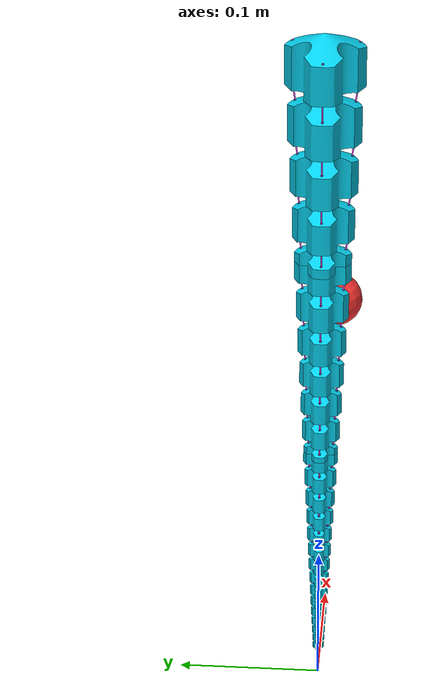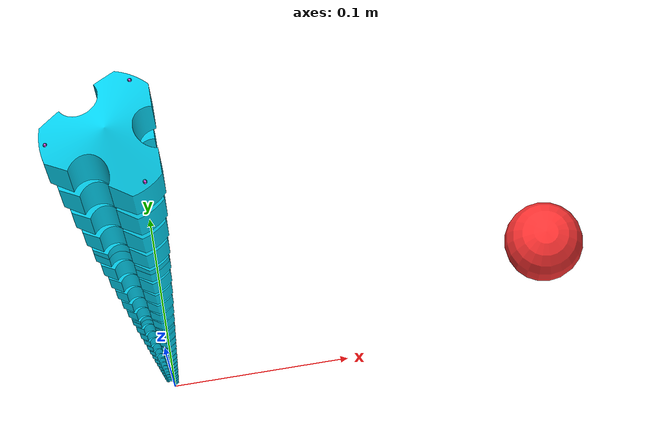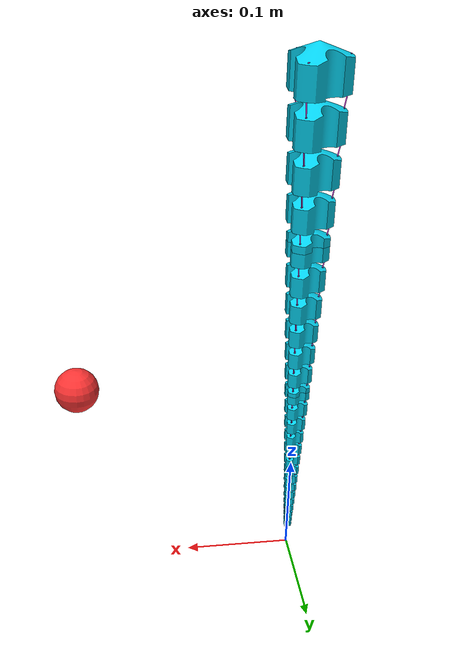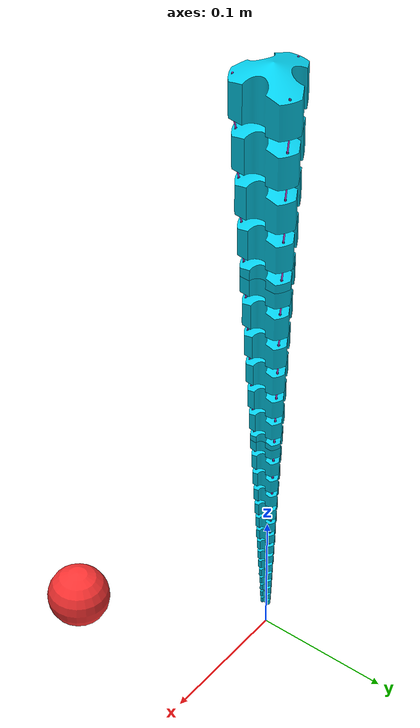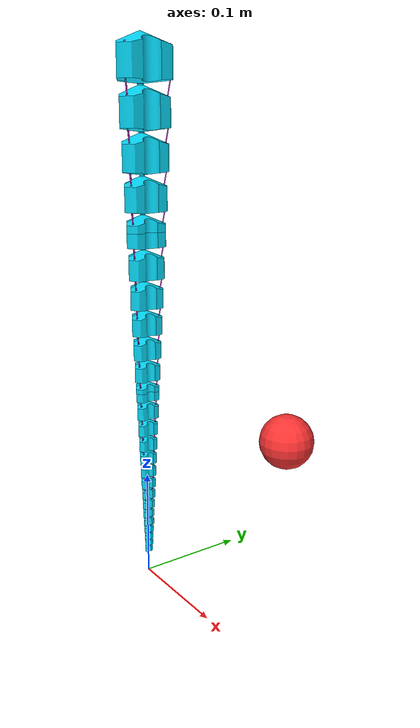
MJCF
<mujoco model="scene">
  <compiler angle="radian" meshdir="assets/"/>

  <size nkey="5"/>

  <visual>
    <global azimuth="160" elevation="0" offwidth="1920" offheight="1080"/>
    <quality shadowsize="0"/>
    <headlight ambient="0.15 0.15 0.15" diffuse="0.9 0.9 0.9" specular="0 0 0"/>
    <map shadowclip="0"/>
    <rgba haze="0 0 0 0"/>
  </visual>

  <default>
    <default class="my-SpiRob">
      <joint armature="0.005" frictionloss="0.1"/>
      <general biastype="affine" gainprm="50" biasprm="0 -50 1"/>
      <default class="visual">
        <geom type="mesh" contype="0" conaffinity="0" group="2"/>
      </default>
      <default class="collision">
        <geom group="3" friction="1 0.5 0.1"/>
      </default>
    </default>
  </default>

  <asset>
    <texture type="skybox" builtin="gradient" rgb1="0 0 0" rgb2="0 0 0" width="512" height="3072"/>
    <texture type="2d" name="groundplane" builtin="checker" rgb1="0.08 0.08 0.09" rgb2="0.04 0.04 0.045" width="300" height="300"/>
    <material name="segment_1__configuration_default_material" rgba="0.015686 0.811765 0.929412 1"/>
    <material name="segment_2__configuration_default_material" rgba="0.015686 0.811765 0.929412 1"/>
    <material name="segment_3__configuration_default_material" rgba="0.015686 0.811765 0.929412 1"/>
    <material name="segment_4__configuration_default_material" rgba="0.015686 0.811765 0.929412 1"/>
    <material name="segment_5_2__configuration_default_material" rgba="0.015686 0.811765 0.929412 1"/>
    <material name="segment_5_1__configuration_default_material" rgba="0.015686 0.811765 0.929412 1"/>
    <material name="segment_6__configuration_default_material" rgba="0.015686 0.811765 0.929412 1"/>
    <material name="segment_7__configuration_default_material" rgba="0.015686 0.811765 0.929412 1"/>
    <material name="segment_8__configuration_default_material" rgba="0.015686 0.811765 0.929412 1"/>
    <material name="segment_9__configuration_default_material" rgba="0.015686 0.811765 0.929412 1"/>
    <material name="segment_10__configuration_default_material" rgba="0.015686 0.811765 0.929412 1"/>
    <material name="segmentt_11_1__configuration_default_material" rgba="0.015686 0.811765 0.929412 1"/>
    <material name="segment_11_2__configuration_default_material" rgba="0.015686 0.811765 0.929412 1"/>
    <material name="segment_12__configuration_default_material" rgba="0.015686 0.811765 0.929412 1"/>
    <material name="segment_13__configuration_default_material" rgba="0.015686 0.811765 0.929412 1"/>
    <material name="segment_14__configuration_default_material" rgba="0.015686 0.811765 0.929412 1"/>
    <material name="segment_15__configuration_default_material" rgba="0.015686 0.811765 0.929412 1"/>
    <material name="segment_16__configuration_default_material" rgba="0.015686 0.811765 0.929412 1"/>
    <material name="segment_17__configuration_default_material" rgba="0.015686 0.811765 0.929412 1"/>
    <material name="segment_18__configuration_default_material" rgba="0.015686 0.811765 0.929412 1"/>
    <material name="segment_19__configuration_default_material" rgba="0.015686 0.811765 0.929412 1"/>
    <material name="segment_20__configuration_default_material" rgba="0.015686 0.811765 0.929412 1"/>
    <material name="segment_21__configuration_default_material" rgba="0.015686 0.811765 0.929412 1"/>
    <material name="segment_22__configuration_default_material" rgba="0.015686 0.811765 0.929412 1"/>
    <material name="segment_23__configuration_default_material" rgba="0.015686 0.811765 0.929412 1"/>
    <material name="segment_24__configuration_default_material" rgba="0.015686 0.811765 0.929412 1"/>
    <material name="segment_25__configuration_default_material" rgba="0.015686 0.811765 0.929412 1"/>
    <material name="groundplane" texture="groundplane" texuniform="true" texrepeat="6 6"/>
    <mesh name="segment_17__configuration_default" file="segment_17__configuration_default.stl"/>
    <mesh name="segment_8__configuration_default" file="segment_8__configuration_default.stl"/>
    <mesh name="segment_3__configuration_default" file="segment_3__configuration_default.stl"/>
    <mesh name="segment_15__configuration_default" file="segment_15__configuration_default.stl"/>
    <mesh name="segment_10__configuration_default" file="segment_10__configuration_default.stl"/>
    <mesh name="segment_25__configuration_default" file="segment_25__configuration_default.stl"/>
    <mesh name="segment_9__configuration_default" file="segment_9__configuration_default.stl"/>
    <mesh name="segment_20__configuration_default" file="segment_20__configuration_default.stl"/>
    <mesh name="segment_13__configuration_default" file="segment_13__configuration_default.stl"/>
    <mesh name="segment_16__configuration_default" file="segment_16__configuration_default.stl"/>
    <mesh name="segment_12__configuration_default" file="segment_12__configuration_default.stl"/>
    <mesh name="segment_22__configuration_default" file="segment_22__configuration_default.stl"/>
    <mesh name="segment_2__configuration_default" file="segment_2__configuration_default.stl"/>
    <mesh name="segment_21__configuration_default" file="segment_21__configuration_default.stl"/>
    <mesh name="segment_5_2__configuration_default" file="segment_5_2__configuration_default.stl"/>
    <mesh name="segment_19__configuration_default" file="segment_19__configuration_default.stl"/>
    <mesh name="segment_24__configuration_default" file="segment_24__configuration_default.stl"/>
    <mesh name="segment_18__configuration_default" file="segment_18__configuration_default.stl"/>
    <mesh name="segment_1__configuration_default" file="segment_1__configuration_default.stl"/>
    <mesh name="segment_4__configuration_default" file="segment_4__configuration_default.stl"/>
    <mesh name="segment_14__configuration_default" file="segment_14__configuration_default.stl"/>
    <mesh name="segmentt_11_1__configuration_default" file="segmentt_11_1__configuration_default.stl"/>
    <mesh name="segment_11_2__configuration_default" file="segment_11_2__configuration_default.stl"/>
    <mesh name="segment_6__configuration_default" file="segment_6__configuration_default.stl"/>
    <mesh name="segment_23__configuration_default" file="segment_23__configuration_default.stl"/>
    <mesh name="segment_5_1__configuration_default" file="segment_5_1__configuration_default.stl"/>
    <mesh name="segment_7__configuration_default" file="segment_7__configuration_default.stl"/>
  </asset>

  <worldbody>
    <camera name="ortho_side" pos="0.2 -1 0.3" quat="0.707107 0.707107 0 0" fovy="0.6"/>
    <light pos="0 0 3.5" dir="0 0 -1" directional="true"/>
    <body name="segment_1__configuration_default" childclass="my-SpiRob" pos="0 0 0.5" quat="0.707105 0 -0.707108 0">
      <inertial pos="-0.023719 1.84225e-08 1.05571e-08" quat="0.92388 -0.382683 -1.75502e-06 -3.54069e-06" mass="0.024494" diaginertia="1.47577e-05 1.26546e-05 1.26546e-05"/>
      <geom class="visual" material="segment_1__configuration_default_material" mesh="segment_1__configuration_default"/>
      <geom class="collision" type="mesh" material="segment_1__configuration_default_material" mesh="segment_1__configuration_default"/>
      <site name="1" pos="-0.0100544 0 0.0250952" quat="0.5 0.5 0.5 0.5" group="3"/>
      <site name="2" pos="-0.0400151 0 0.0250952" quat="0.5 0.5 0.5 0.5" group="3"/>
      <site name="3" pos="-0.0100552 0.0217331 -0.0125476" quat="0.5 0.5 0.5 0.5" group="3"/>
      <site name="4" pos="-0.0400151 0.0217331 -0.0125476" quat="0.5 0.5 0.5 0.5" group="3"/>
      <site name="5" pos="-0.040015 -0.0217331 -0.0125476" quat="0.5 0.5 0.5 0.5" group="3"/>
      <site name="6" pos="-0.0100551 -0.0217331 -0.0125476" quat="0.5 0.5 0.5 0.5" group="3"/>
      <body name="segment_2__configuration_default" pos="-0.042844 0 0" quat="0 0 1 0">
        <inertial pos="0.0218709 1.13482e-08 -5.9967e-09" quat="0.923881 0.382679 -3.64564e-06 1.51006e-06" mass="0.0190509" diaginertia="9.84761e-06 8.45722e-06 8.45722e-06"/>
        <joint name="x_1" pos="0 0 0" axis="0 0 1" stiffness="0.3" damping="0.1"/>
        <joint name="y_1" pos="0 0 0" axis="0 1 0" stiffness="0.3" damping="0.1"/>
        <geom class="visual" pos="-0.042844 0 0" quat="0 0 -1 0" material="segment_2__configuration_default_material" mesh="segment_2__configuration_default"/>
        <geom class="collision" pos="-0.042844 0 0" quat="0 0 -1 0" type="mesh" material="segment_2__configuration_default_material" mesh="segment_2__configuration_default"/>
        <site name="ee_seg1" pos="0 0 0" size="0.003" group="3" rgba="0 1 0 1"/>
        <site name="7" pos="0.00916355 -0.0198802 0.0114778" quat="0.5 -0.5 -0.5 0.5" group="3"/>
        <site name="8" pos="0.00916268 0 -0.0229556" quat="0.5 -0.5 -0.5 0.5" group="3"/>
        <site name="9" pos="0.00916308 0.0198802 0.0114778" quat="0.5 -0.5 -0.5 0.5" group="3"/>
        <site name="10" pos="0.036951 0.0198802 0.0114778" quat="0.5 -0.5 -0.5 0.5" group="3"/>
        <site name="11" pos="0.036951 0 -0.0229556" quat="0.5 -0.5 -0.5 0.5" group="3"/>
        <site name="12" pos="0.0369508 -0.0198802 0.0114778" quat="0.5 -0.5 -0.5 0.5" group="3"/>
        <body name="segment_3__configuration_default" pos="0.0395269 0 0">
          <inertial pos="0.0201766 1.11039e-08 -5.4109e-09" quat="0.923881 0.382679 -3.66949e-06 1.51993e-06" mass="0.0149685" diaginertia="6.5695e-06 5.64464e-06 5.64464e-06"/>
          <joint name="x_2" pos="0 0 0" axis="0 0 1" stiffness="0.3" damping="0.1"/>
          <joint name="y_2" pos="0 0 0" axis="0 1 0" stiffness="0.3" damping="0.1"/>
          <geom class="visual" pos="-0.0823709 0 0" quat="0 0 1 0" material="segment_3__configuration_default_material" mesh="segment_3__configuration_default"/>
          <geom class="collision" pos="-0.0823709 0 0" quat="0 0 1 0" type="mesh" material="segment_3__configuration_default_material" mesh="segment_3__configuration_default"/>
          <site name="ee_seg2" pos="0 0 0" size="0.003" group="3" rgba="0 1 0 1"/>
          <site name="13" pos="0.0341241 0.0181707 0.0104908" quat="0.5 -0.5 -0.5 0.5" group="3"/>
          <site name="14" pos="0.00834014 0.0181707 0.0104908" quat="0.5 -0.5 -0.5 0.5" group="3"/>
          <site name="15" pos="0.00834105 -0.0181707 0.0104908" quat="0.5 -0.5 -0.5 0.5" group="3"/>
          <site name="16" pos="0.0341239 -0.0181707 0.0104908" quat="0.5 -0.5 -0.5 0.5" group="3"/>
          <site name="17" pos="0.0341241 0 -0.0209817" quat="0.5 -0.5 -0.5 0.5" group="3"/>
          <site name="18" pos="0.00834012 0 -0.0209817" quat="0.5 -0.5 -0.5 0.5" group="3"/>
          <body name="segment_4__configuration_default" pos="0.0364667 0 0">
            <inertial pos="0.0186135 1.05568e-08 -1.17938e-08" quat="1 0 -4.0175e-06 0" mass="0.0117934" diaginertia="4.3814e-06 3.76659e-06 3.76659e-06"/>
            <joint name="x_3" pos="0 0 0" axis="0 0 1" stiffness="0.3" damping="0.1"/>
            <joint name="y_3" pos="0 0 0" axis="0 1 0" stiffness="0.3" damping="0.1"/>
            <geom class="visual" pos="-0.118838 0 0" quat="0 0 1 0" material="segment_4__configuration_default_material" mesh="segment_4__configuration_default"/>
            <geom class="collision" pos="-0.118838 0 0" quat="0 0 1 0" type="mesh" material="segment_4__configuration_default_material" mesh="segment_4__configuration_default"/>
            <site name="ee_seg3" pos="0 0 0" size="0.003" group="3" rgba="0 1 0 1"/>
            <site name="19" pos="0.00758095 0.0165936 0.0095803" quat="0.5 -0.5 -0.5 0.5" group="3"/>
            <site name="20" pos="0.00758153 0 -0.0191606" quat="0.5 -0.5 -0.5 0.5" group="3"/>
            <site name="21" pos="0.00758306 -0.0165936 0.0095803" quat="0.5 -0.5 -0.5 0.5" group="3"/>
            <site name="22" pos="0.0315159 -0.0165936 0.0095803" quat="0.5 -0.5 -0.5 0.5" group="3"/>
            <site name="23" pos="0.031516 0.0165936 0.0095803" quat="0.5 -0.5 -0.5 0.5" group="3"/>
            <site name="24" pos="0.031516 0 -0.0191606" quat="0.5 -0.5 -0.5 0.5" group="3"/>
            <body name="segment_5_1__configuration_default" pos="0.0336433 0 0">
              <inertial pos="0.0171713 4.27188e-09 -1.04214e-08" mass="0.00907185" diaginertia="2.92117e-06 2.51273e-06 2.51273e-06"/>
              <joint name="x_4" pos="0 0 0" axis="0 0 1" stiffness="0.3" damping="0.1"/>
              <joint name="y_4" pos="0 0 0" axis="0 1 0" stiffness="0.3" damping="0.1"/>
              <geom class="visual" pos="-0.152481 0 0" quat="0 0 -1 0" material="segment_5_2__configuration_default_material" mesh="segment_5_2__configuration_default"/>
              <geom class="collision" pos="-0.152481 0 0" quat="0 0 -1 0" type="mesh" material="segment_5_2__configuration_default_material" mesh="segment_5_2__configuration_default"/>
              <geom class="visual" pos="-0.152481 0 0" quat="0 0 1 0" material="segment_5_1__configuration_default_material" mesh="segment_5_1__configuration_default"/>
              <geom class="collision" pos="-0.152481 0 0" quat="0 0 1 0" type="mesh" material="segment_5_1__configuration_default_material" mesh="segment_5_1__configuration_default"/>
              <site name="ee_seg4" pos="0 0 0" size="0.003" group="3" rgba="0 1 0 1"/>
              <site name="25" pos="0.00696165 0.0151386 0.00874025" quat="0.5 -0.5 -0.5 0.5" group="3"/>
              <site name="26" pos="0.00696375 -0.0151386 0.00874025" quat="0.5 -0.5 -0.5 0.5" group="3"/>
              <site name="27" pos="0.00696158 0 -0.0174805" quat="0.5 -0.5 -0.5 0.5" group="3"/>
              <site name="28" pos="0.0290589 0.0151386 0.00874025" quat="0.5 -0.5 -0.5 0.5" group="3"/>
              <site name="29" pos="0.0290589 0 -0.0174805" quat="0.5 -0.5 -0.5 0.5" group="3"/>
              <site name="30" pos="0.0290587 -0.0151386 0.00874025" quat="0.5 -0.5 -0.5 0.5" group="3"/>
              <body name="segment_6__configuration_default" pos="0.0310386 0 0">
                <inertial pos="0.0158407 9.68272e-09 -2.25308e-08" mass="0.00725748" diaginertia="1.94689e-06 1.67579e-06 1.67579e-06"/>
                <joint name="x_5" pos="0 0 0" axis="0 0 1" stiffness="0.3" damping="0.1"/>
                <joint name="y_5" pos="0 0 0" axis="0 1 0" stiffness="0.3" damping="0.1"/>
                <geom class="visual" pos="-0.183519 0 0" quat="0 0 1 0" material="segment_6__configuration_default_material" mesh="segment_6__configuration_default"/>
                <geom class="collision" pos="-0.183519 0 0" quat="0 0 1 0" type="mesh" material="segment_6__configuration_default_material" mesh="segment_6__configuration_default"/>
                <site name="ee_seg5" pos="0 0 0" size="0.003" group="3" rgba="0 1 0 1"/>
                <site name="31" pos="0.00623536 0.0137962 0.00796523" quat="0.5 -0.5 -0.5 0.5" group="3"/>
                <site name="32" pos="0.00623682 -0.0137962 0.00796523" quat="0.5 -0.5 -0.5 0.5" group="3"/>
                <site name="33" pos="0.0062347 0 -0.0159305" quat="0.5 -0.5 -0.5 0.5" group="3"/>
                <site name="34" pos="0.0268901 0.0137962 0.00796523" quat="0.5 -0.5 -0.5 0.5" group="3"/>
                <site name="35" pos="0.0268901 0 -0.0159305" quat="0.5 -0.5 -0.5 0.5" group="3"/>
                <site name="36" pos="0.0268899 -0.0137962 0.00796523" quat="0.5 -0.5 -0.5 0.5" group="3"/>
                <body name="segment_7__configuration_default" pos="0.0286355 0 0" quat="1 0 0 0">
                  <inertial pos="0.0146131 9.45033e-09 -2.1313e-08" mass="0.0058967" diaginertia="1.29707e-06 1.11725e-06 1.11724e-06"/>
                  <joint name="x_6" pos="0 0 0" axis="0 0 1" stiffness="0.3" damping="0.1"/>
                  <joint name="y_6" pos="0 0 0" axis="0 1 0" stiffness="0.3" damping="0.1"/>
                  <geom class="visual" pos="-0.212155 0 0" quat="0 0 1 0" material="segment_7__configuration_default_material" mesh="segment_7__configuration_default"/>
                  <geom class="collision" pos="-0.212155 0 0" quat="0 0 1 0" type="mesh" material="segment_7__configuration_default_material" mesh="segment_7__configuration_default"/>
                  <site name="ee_seg6" pos="0 0 0" size="0.003" group="3" rgba="0 1 0 1"/>
                  <site name="37" pos="0.00564008 0.0125577 0.00725022" quat="0.5 -0.5 -0.5 0.5" group="3"/>
                  <site name="38" pos="0.00563888 0 -0.0145004" quat="0.5 -0.5 -0.5 0.5" group="3"/>
                  <site name="39" pos="0.00564067 -0.0125577 0.00725022" quat="0.5 -0.5 -0.5 0.5" group="3"/>
                  <site name="40" pos="0.0248419 -0.0125577 0.00725022" quat="0.5 -0.5 -0.5 0.5" group="3"/>
                  <site name="41" pos="0.0248421 0.0125577 0.00725022" quat="0.5 -0.5 -0.5 0.5" group="3"/>
                  <site name="42" pos="0.0248421 0 -0.0145004" quat="0.5 -0.5 -0.5 0.5" group="3"/>
                  <body name="segment_8__configuration_default" pos="0.0264185 0 0">
                    <inertial pos="0.0134806 9.2626e-09 -2.02192e-08" mass="0.00453592" diaginertia="8.63766e-07 7.44581e-07 7.44579e-07"/>
                    <joint name="x_7" pos="0 0 0" axis="0 0 1" stiffness="0.3" damping="0.1"/>
                    <joint name="y_7" pos="0 0 0" axis="0 1 0" stiffness="0.3" damping="0.1"/>
                    <geom class="visual" pos="-0.238574 0 0" quat="0 0 1 0" material="segment_8__configuration_default_material" mesh="segment_8__configuration_default"/>
                    <geom class="collision" pos="-0.238574 0 0" quat="0 0 1 0" type="mesh" material="segment_8__configuration_default_material" mesh="segment_8__configuration_default"/>
                    <site name="ee_seg7" pos="0 0 0" size="0.003" group="3" rgba="0 1 0 1"/>
                    <site name="43" pos="0.0229527 0 -0.0131811" quat="0.5 -0.5 -0.5 0.5" group="3"/>
                    <site name="44" pos="0.00508945 0 -0.0131811" quat="0.5 -0.5 -0.5 0.5" group="3"/>
                    <site name="45" pos="0.00509111 0.0114152 0.00659057" quat="0.5 -0.5 -0.5 0.5" group="3"/>
                    <site name="46" pos="0.0229527 0.0114152 0.00659057" quat="0.5 -0.5 -0.5 0.5" group="3"/>
                    <site name="47" pos="0.0229525 -0.0114152 0.00659057" quat="0.5 -0.5 -0.5 0.5" group="3"/>
                    <site name="48" pos="0.00509068 -0.0114152 0.00659057" quat="0.5 -0.5 -0.5 0.5" group="3"/>
                    <body name="segment_9__configuration_default" pos="0.0243731 0 0" quat="1 0 0 0">
                      <inertial pos="0.0124357 9.25317e-09 -1.95027e-08" mass="0.00362874" diaginertia="5.74939e-07 4.96005e-07 4.96003e-07"/>
                      <joint name="x_8" pos="0 0 0" axis="0 0 1" stiffness="0.3" damping="0.1"/>
                      <joint name="y_8" pos="0 0 0" axis="0 1 0" stiffness="0.3" damping="0.1"/>
                      <geom class="visual" pos="-0.262947 0 0" quat="0 0 -1 0" material="segment_9__configuration_default_material" mesh="segment_9__configuration_default"/>
                      <geom class="collision" pos="-0.262947 0 0" quat="0 0 -1 0" type="mesh" material="segment_9__configuration_default_material" mesh="segment_9__configuration_default"/>
                      <site name="ee_seg8" pos="0 0 0" size="0.003" group="3" rgba="0 1 0 1"/>
                      <site name="49" pos="0.0212094 -0.0103611 0.00598198" quat="0.5 -0.5 -0.5 0.5" group="3"/>
                      <site name="50" pos="0.0045823 -0.0103611 0.00598198" quat="0.5 -0.5 -0.5 0.5" group="3"/>
                      <site name="52" pos="0.0212096 0.0103611 0.00598198" quat="0.5 -0.5 -0.5 0.5" group="3"/>
                      <site name="53" pos="0.00458299 0.0103611 0.00598198" quat="0.5 -0.5 -0.5 0.5" group="3"/>
                      <site name="54" pos="0.00458181 0 -0.011964" quat="0.5 -0.5 -0.5 0.5" group="3"/>
                      <site name="55" pos="0.0212095 0 -0.011964" quat="0.5 -0.5 -0.5 0.5" group="3"/>
                      <body name="segment_10__configuration_default" pos="0.0224861 0 0">
                        <inertial pos="0.0114718 1.09038e-08 -1.15964e-08" mass="0.00272155" diaginertia="3.82493e-07 3.30251e-07 3.30251e-07"/>
                        <joint name="x_9" pos="0 0 0" axis="0 0 1" stiffness="0.3" damping="0.1"/>
                        <joint name="y_9" pos="0 0 0" axis="0 1 0" stiffness="0.3" damping="0.1"/>
                        <geom class="visual" pos="-0.285433 0 0" quat="0 0 1 0" material="segment_10__configuration_default_material" mesh="segment_10__configuration_default"/>
                        <geom class="collision" pos="-0.285433 0 0" quat="0 0 1 0" type="mesh" material="segment_10__configuration_default_material" mesh="segment_10__configuration_default"/>
                        <site name="ee_seg9" pos="0 0 0" size="0.003" group="3" rgba="0 1 0 1"/>
                        <site name="51" pos="0.0196014 0 -0.010841" quat="0.5 -0.5 -0.5 0.5" group="3"/>
                        <site name="56" pos="0.00411437 0.00938862 0.00542052" quat="0.5 -0.5 -0.5 0.5" group="3"/>
                        <site name="57" pos="0.00411352 0 -0.010841" quat="0.5 -0.5 -0.5 0.5" group="3"/>
                        <site name="58" pos="0.00411448 -0.00938862 0.00542052" quat="0.5 -0.5 -0.5 0.5" group="3"/>
                        <site name="59" pos="0.0196013 0.00938862 0.00542052" quat="0.5 -0.5 -0.5 0.5" group="3"/>
                        <site name="60" pos="0.0196012 -0.00938862 0.00542052" quat="0.5 -0.5 -0.5 0.5" group="3"/>
                        <body name="segment_11_2__configuration_default" pos="0.0207452 0 0" quat="1 0 0 0">
                          <inertial pos="0.0105825 4.66794e-09 -4.96433e-09" mass="0.00226796" diaginertia="2.54326e-07 2.19766e-07 2.19766e-07"/>
                          <joint name="x_10" pos="0 0 0" axis="0 0 1" stiffness="0.3" damping="0.1"/>
                          <joint name="y_10" pos="0 0 0" axis="0 1 0" stiffness="0.3" damping="0.1"/>
                          <geom class="visual" pos="-0.306178 0 0" quat="0 0 1 0" material="segmentt_11_1__configuration_default_material" mesh="segmentt_11_1__configuration_default"/>
                          <geom class="collision" pos="-0.306178 0 0" quat="0 0 1 0" type="mesh" material="segmentt_11_1__configuration_default_material" mesh="segmentt_11_1__configuration_default"/>
                          <geom class="visual" pos="-0.306178 0 0" quat="0 0 -1 0" material="segment_11_2__configuration_default_material" mesh="segment_11_2__configuration_default"/>
                          <geom class="collision" pos="-0.306178 0 0" quat="0 0 -1 0" type="mesh" material="segment_11_2__configuration_default_material" mesh="segment_11_2__configuration_default"/>
                          <site name="ee_seg10" pos="0 0 0" size="0.003" group="3" rgba="0 1 0 1"/>
                          <site name="61" pos="0.0180827 -0.00849142 0.00490253" quat="0.5 -0.5 -0.5 0.5" group="3"/>
                          <site name="62" pos="0.00373368 -0.00849142 0.00490253" quat="0.5 -0.5 -0.5 0.5" group="3"/>
                          <site name="63" pos="0.00373261 0 -0.00980505" quat="0.5 -0.5 -0.5 0.5" group="3"/>
                          <site name="64" pos="0.0180829 0 -0.00980505" quat="0.5 -0.5 -0.5 0.5" group="3"/>
                          <site name="65" pos="0.0180829 0.00849142 0.00490253" quat="0.5 -0.5 -0.5 0.5" group="3"/>
                          <site name="66" pos="0.00373294 0.00849142 0.00490253" quat="0.5 -0.5 -0.5 0.5" group="3"/>
                          <body name="segment_12__configuration_default" pos="0.019139 0 0" quat="1 0 0 0">
                            <inertial pos="0.00976212 9.31267e-09 -1.61388e-08" mass="0.00181437" diaginertia="1.69004e-07 1.46151e-07 1.46151e-07"/>
                            <joint name="x_11" pos="0 0 0" axis="0 0 1" stiffness="0.3" damping="0.1"/>
                            <joint name="y_11" pos="0 0 0" axis="0 1 0" stiffness="0.3" damping="0.1"/>
                            <geom class="visual" pos="-0.325317 0 0" quat="0 0 1 0" material="segment_12__configuration_default_material" mesh="segment_12__configuration_default"/>
                            <geom class="collision" pos="-0.325317 0 0" quat="0 0 1 0" type="mesh" material="segment_12__configuration_default_material" mesh="segment_12__configuration_default"/>
                            <site name="ee_seg11" pos="0 0 0" size="0.003" group="3" rgba="0 1 0 1"/>
                            <site name="67" pos="0.0167487 -0.00766369 0.00442464" quat="0.5 -0.5 -0.5 0.5" group="3"/>
                            <site name="68" pos="0.00328566 -0.00766369 0.00442464" quat="0.5 -0.5 -0.5 0.5" group="3"/>
                            <site name="69" pos="0.0167489 0.00766369 0.00442464" quat="0.5 -0.5 -0.5 0.5" group="3"/>
                            <site name="70" pos="0.00328347 0.00766369 0.00442464" quat="0.5 -0.5 -0.5 0.5" group="3"/>
                            <site name="71" pos="0.0167489 0 -0.00884927" quat="0.5 -0.5 -0.5 0.5" group="3"/>
                            <site name="72" pos="0.00328429 0 -0.00884927" quat="0.5 -0.5 -0.5 0.5" group="3"/>
                            <body name="segment_13__configuration_default" pos="0.0176573 0 0" quat="1 0 0 0">
                              <inertial pos="0.00900538 9.25531e-09 -1.56183e-08" mass="0.00136078" diaginertia="1.12241e-07 9.71256e-08 9.71253e-08"/>
                              <joint name="x_12" pos="0 0 0" axis="0 0 1" stiffness="0.3" damping="0.1"/>
                              <joint name="y_12" pos="0 0 0" axis="0 1 0" stiffness="0.3" damping="0.1"/>
                              <geom class="visual" pos="-0.342974 0 0" quat="0 0 -1 0" material="segment_13__configuration_default_material" mesh="segment_13__configuration_default"/>
                              <geom class="collision" pos="-0.342974 0 0" quat="0 0 -1 0" type="mesh" material="segment_13__configuration_default_material" mesh="segment_13__configuration_default"/>
                              <site name="ee_seg12" pos="0 0 0" size="0.003" group="3" rgba="0 1 0 1"/>
                              <site name="73" pos="0.0154859 -0.00690005 0.00398375" quat="0.5 -0.5 -0.5 0.5" group="3"/>
                              <site name="74" pos="0.0029181 -0.00690005 0.00398375" quat="0.5 -0.5 -0.5 0.5" group="3"/>
                              <site name="75" pos="0.00291607 0 -0.00796749" quat="0.5 -0.5 -0.5 0.5" group="3"/>
                              <site name="76" pos="0.0154861 0 -0.00796749" quat="0.5 -0.5 -0.5 0.5" group="3"/>
                              <site name="77" pos="0.0154861 0.00690005 0.00398375" quat="0.5 -0.5 -0.5 0.5" group="3"/>
                              <site name="78" pos="0.00291581 0.00690005 0.00398375" quat="0.5 -0.5 -0.5 0.5" group="3"/>
                              <body name="segment_14__configuration_default" pos="0.0162902 0 0">
                                <inertial pos="0.00830739 9.27243e-09 -1.52171e-08" mass="0.000907185" diaginertia="7.44986e-08 6.44937e-08 6.44935e-08"/>
                                <joint name="x_13" pos="0 0 0" axis="0 0 1" stiffness="0.3" damping="0.1"/>
                                <joint name="y_13" pos="0 0 0" axis="0 1 0" stiffness="0.3" damping="0.1"/>
                                <geom class="visual" pos="-0.359264 0 0" quat="0 0 -1 0" material="segment_14__configuration_default_material" mesh="segment_14__configuration_default"/>
                                <geom class="collision" pos="-0.359264 0 0" quat="0 0 -1 0" type="mesh" material="segment_14__configuration_default_material" mesh="segment_14__configuration_default"/>
                                <site name="ee_seg13" pos="0 0 0" size="0.003" group="3" rgba="0 1 0 1"/>
                                <site name="79" pos="0.00257692 0.00619553 0.00357699" quat="0.5 -0.5 -0.5 0.5" group="3"/>
                                <site name="80" pos="0.0143211 0.00619553 0.00357699" quat="0.5 -0.5 -0.5 0.5" group="3"/>
                                <site name="81" pos="0.0143209 -0.00619553 0.00357699" quat="0.5 -0.5 -0.5 0.5" group="3"/>
                                <site name="82" pos="0.00257885 -0.00619553 0.00357699" quat="0.5 -0.5 -0.5 0.5" group="3"/>
                                <site name="83" pos="0.00257673 0 -0.00715398" quat="0.5 -0.5 -0.5 0.5" group="3"/>
                                <site name="84" pos="0.0143211 0 -0.00715398" quat="0.5 -0.5 -0.5 0.5" group="3"/>
                                <body name="segment_15__configuration_default" pos="0.015029 0 0">
                                  <inertial pos="0.00766367 9.36767e-09 -1.49414e-08" mass="0.000907185" diaginertia="4.94204e-08 4.2787e-08 4.27868e-08"/>
                                  <joint name="x_14" pos="0 0 0" axis="0 0 1" stiffness="0.3" damping="0.1"/>
                                  <joint name="y_14" pos="0 0 0" axis="0 1 0" stiffness="0.3" damping="0.1"/>
                                  <geom class="visual" pos="-0.374293 0 0" quat="0 0 -1 0" material="segment_15__configuration_default_material" mesh="segment_15__configuration_default"/>
                                  <geom class="collision" pos="-0.374293 0 0" quat="0 0 -1 0" type="mesh" material="segment_15__configuration_default_material" mesh="segment_15__configuration_default"/>
                                  <site name="ee_seg14" pos="0 0 0" size="0.003" group="3" rgba="0 1 0 1"/>
                                  <site name="85" pos="0.0132462 0 -0.00640345" quat="0.5 -0.5 -0.5 0.5" group="3"/>
                                  <site name="86" pos="0.00226401 0 -0.00640345" quat="0.5 -0.5 -0.5 0.5" group="3"/>
                                  <site name="87" pos="0.00226454 0.00554555 0.00320173" quat="0.5 -0.5 -0.5 0.5" group="3"/>
                                  <site name="88" pos="0.0132462 0.00554555 0.00320173" quat="0.5 -0.5 -0.5 0.5" group="3"/>
                                  <site name="89" pos="0.0132461 -0.00554555 0.00320173" quat="0.5 -0.5 -0.5 0.5" group="3"/>
                                  <site name="90" pos="0.00226586 -0.00554555 0.00320173" quat="0.5 -0.5 -0.5 0.5" group="3"/>
                                  <body name="segment_16__configuration_default" pos="0.0138654 0 0" quat="1 0 0 0">
                                    <inertial pos="0.0070701 9.54699e-09 -1.48007e-08" mass="0.000453592" diaginertia="3.27686e-08 2.83576e-08 2.83575e-08"/>
                                    <joint name="x_15" pos="0 0 0" axis="0 0 1" stiffness="0.3" damping="0.1"/>
                                    <joint name="y_15" pos="0 0 0" axis="0 1 0" stiffness="0.3" damping="0.1"/>
                                    <geom class="visual" pos="-0.388159 0 0" quat="0 0 1 0" material="segment_16__configuration_default_material" mesh="segment_16__configuration_default"/>
                                    <geom class="collision" pos="-0.388159 0 0" quat="0 0 1 0" type="mesh" material="segment_16__configuration_default_material" mesh="segment_16__configuration_default"/>
                                    <site name="ee_seg15" pos="0 0 0" size="0.003" group="3" rgba="0 1 0 1"/>
                                    <site name="91" pos="0.00197662 0.0049459 0.00285551" quat="0.5 -0.5 -0.5 0.5" group="3"/>
                                    <site name="92" pos="0.0019771 -0.0049459 0.00285551" quat="0.5 -0.5 -0.5 0.5" group="3"/>
                                    <site name="93" pos="0.0122546 0.0049459 0.00285551" quat="0.5 -0.5 -0.5 0.5" group="3"/>
                                    <site name="94" pos="0.0122544 -0.0049459 0.00285551" quat="0.5 -0.5 -0.5 0.5" group="3"/>
                                    <site name="95" pos="0.0122546 0 -0.00571103" quat="0.5 -0.5 -0.5 0.5" group="3"/>
                                    <site name="96" pos="0.00197584 0 -0.00571103" quat="0.5 -0.5 -0.5 0.5" group="3"/>
                                    <body name="segment_17__configuration_default" pos="0.0127919 0 0">
                                      <inertial pos="0.00652292 9.81916e-09 -1.48077e-08" mass="0.000453592" diaginertia="2.17199e-08 1.87732e-08 1.87731e-08"/>
                                      <joint name="x_16" pos="0 0 0" axis="0 0 1" stiffness="0.3" damping="0.1"/>
                                      <joint name="y_16" pos="0 0 0" axis="0 1 0" stiffness="0.3" damping="0.1"/>
                                      <geom class="visual" pos="-0.400951 0 0" quat="0 0 -1 0" material="segment_17__configuration_default_material" mesh="segment_17__configuration_default"/>
                                      <geom class="collision" pos="-0.400951 0 0" quat="0 0 -1 0" type="mesh" material="segment_17__configuration_default_material" mesh="segment_17__configuration_default"/>
                                      <site name="ee_seg16" pos="0 0 0" size="0.003" group="3" rgba="0 1 0 1"/>
                                      <site name="97" pos="0.00170936 0 -0.00507222" quat="0.5 -0.5 -0.5 0.5" group="3"/>
                                      <site name="98" pos="0.00171125 0.00439267 0.00253611" quat="0.5 -0.5 -0.5 0.5" group="3"/>
                                      <site name="99" pos="0.00171068 -0.00439267 0.00253611" quat="0.5 -0.5 -0.5 0.5" group="3"/>
                                      <site name="100" pos="0.0113398 0.00439267 0.00253611" quat="0.5 -0.5 -0.5 0.5" group="3"/>
                                      <site name="101" pos="0.0113397 0 -0.00507222" quat="0.5 -0.5 -0.5 0.5" group="3"/>
                                      <site name="102" pos="0.0113396 -0.00439267 0.00253611" quat="0.5 -0.5 -0.5 0.5" group="3"/>
                                      <body name="segment_18__configuration_default" pos="0.0118015 0 0" quat="1 0 0 0">
                                        <inertial pos="0.00601868 1.12794e-08 -1.49464e-08" mass="0.000453592" diaginertia="1.43944e-08 1.24124e-08 1.24124e-08"/>
                                        <joint name="x_17" pos="0 0 0" axis="0 0 1" stiffness="0.3" damping="0.1"/>
                                        <joint name="y_17" pos="0 0 0" axis="0 1 0" stiffness="0.3" damping="0.1"/>
                                        <geom class="visual" pos="-0.412752 0 0" quat="0 0 -1 0" material="segment_18__configuration_default_material" mesh="segment_18__configuration_default"/>
                                        <geom class="collision" pos="-0.412752 0 0" quat="0 0 -1 0" type="mesh" material="segment_18__configuration_default_material" mesh="segment_18__configuration_default"/>
                                        <site name="ee_seg17" pos="0 0 0" size="0.003" group="3" rgba="0 1 0 1"/>
                                        <site name="103" pos="0.00146467 -0.00388227 0.00224143" quat="0.5 -0.5 -0.5 0.5" group="3"/>
                                        <site name="104" pos="0.00146533 0.00388227 0.00224143" quat="0.5 -0.5 -0.5 0.5" group="3"/>
                                        <site name="105" pos="0.00146395 0 -0.00448286" quat="0.5 -0.5 -0.5 0.5" group="3"/>
                                        <site name="106" pos="0.0104957 0 -0.00448286" quat="0.5 -0.5 -0.5 0.5" group="3"/>
                                        <site name="107" pos="0.0104958 0.00388227 0.00224143" quat="0.5 -0.5 -0.5 0.5" group="3"/>
                                        <site name="108" pos="0.0104956 -0.00388227 0.00224143" quat="0.5 -0.5 -0.5 0.5" group="3"/>
                                        <body name="segment_19__configuration_default" pos="0.0108878 0 0" quat="1 0 0 0">
                                          <inertial pos="0.00555715 7.27659e-09 -6.67771e-09" mass="0.000453592" diaginertia="1.00445e-08 8.61084e-09 8.61082e-09"/>
                                          <joint name="x_18" pos="0 0 0" axis="0 0 1" stiffness="0.3" damping="0.1"/>
                                          <joint name="y_18" pos="0 0 0" axis="0 1 0" stiffness="0.3" damping="0.1"/>
                                          <geom class="visual" pos="-0.42364 0 0" quat="0 0 1 0" material="segment_19__configuration_default_material" mesh="segment_19__configuration_default"/>
                                          <geom class="collision" pos="-0.42364 0 0" quat="0 0 1 0" type="mesh" material="segment_19__configuration_default_material" mesh="segment_19__configuration_default"/>
                                          <site name="ee_seg18" pos="0 0 0" size="0.003" group="3" rgba="0 1 0 1"/>
                                          <site name="109" pos="0.00134585 0.00341139 0.00196957" quat="0.5 -0.5 -0.5 0.5" group="3"/>
                                          <site name="110" pos="0.00134619 0 -0.00393914" quat="0.5 -0.5 -0.5 0.5" group="3"/>
                                          <site name="111" pos="0.0013471 -0.00341139 0.00196957" quat="0.5 -0.5 -0.5 0.5" group="3"/>
                                          <site name="112" pos="0.0096843 -0.00341139 0.00196957" quat="0.5 -0.5 -0.5 0.5" group="3"/>
                                          <site name="113" pos="0.00968426 0.00341139 0.00196957" quat="0.5 -0.5 -0.5 0.5" group="3"/>
                                          <site name="114" pos="0.00968438 0 -0.00393914" quat="0.5 -0.5 -0.5 0.5" group="3"/>
                                          <body name="segment_20__configuration_default" pos="0.0100449 0 0" quat="1 0 0 0">
                                            <inertial pos="0.0051282 3.50084e-09 -8.91244e-09" mass="0.000453592" diaginertia="6.68925e-09 5.71721e-09 5.7172e-09"/>
                                            <joint name="x_19" pos="0 0 0" axis="0 0 1" stiffness="0.3" damping="0.1"/>
                                            <joint name="y_19" pos="0 0 0" axis="0 1 0" stiffness="0.3" damping="0.1"/>
                                            <geom class="visual" pos="-0.433685 0 0" quat="0 0 1 0" material="segment_20__configuration_default_material" mesh="segment_20__configuration_default"/>
                                            <geom class="collision" pos="-0.433685 0 0" quat="0 0 1 0" type="mesh" material="segment_20__configuration_default_material" mesh="segment_20__configuration_default"/>
                                            <site name="ee_seg19" pos="0 0 0" size="0.003" group="3" rgba="0 1 0 1"/>
                                            <site name="115" pos="0.00113692 0 -0.00343751" quat="0.5 -0.5 -0.5 0.5" group="3"/>
                                            <site name="116" pos="0.00113693 0.00297697 0.00171875" quat="0.5 -0.5 -0.5 0.5" group="3"/>
                                            <site name="117" pos="0.00113833 -0.00297697 0.00171875" quat="0.5 -0.5 -0.5 0.5" group="3"/>
                                            <site name="118" pos="0.00896592 -0.00297697 0.00171875" quat="0.5 -0.5 -0.5 0.5" group="3"/>
                                            <site name="119" pos="0.00896592 0.00297697 0.00171875" quat="0.5 -0.5 -0.5 0.5" group="3"/>
                                            <site name="120" pos="0.00896601 0 -0.00343751" quat="0.5 -0.5 -0.5 0.5" group="3"/>
                                            <body name="segment_21__configuration_default" pos="0.00926718 0 0" quat="1 0 0 0">
                                              <inertial pos="0.0047331 3.56445e-09 -8.81065e-09" mass="0.000189148" diaginertia="4.4574e-09 3.79283e-09 3.79282e-09"/>
                                              <joint name="x_20" pos="0 0 0" axis="0 0 1" stiffness="0.3" damping="0.1"/>
                                              <joint name="y_20" pos="0 0 0" axis="0 1 0" stiffness="0.3" damping="0.1"/>
                                              <geom class="visual" pos="-0.442952 0 0" quat="0 0 1 0" material="segment_21__configuration_default_material" mesh="segment_21__configuration_default"/>
                                              <geom class="collision" pos="-0.442952 0 0" quat="0 0 1 0" type="mesh" material="segment_21__configuration_default_material" mesh="segment_21__configuration_default"/>
                                              <site name="ee_seg20" pos="0 0 0" size="0.003" group="3" rgba="0 1 0 1"/>
                                              <site name="121" pos="0.000945399 -0.00257618 0.00148736" quat="0.5 -0.5 -0.5 0.5" group="3"/>
                                              <site name="122" pos="0.000944099 0.00257618 0.00148736" quat="0.5 -0.5 -0.5 0.5" group="3"/>
                                              <site name="123" pos="0.000943825 0 -0.00297472" quat="0.5 -0.5 -0.5 0.5" group="3"/>
                                              <site name="124" pos="0.00830316 -0.00257618 0.00148736" quat="0.5 -0.5 -0.5 0.5" group="3"/>
                                              <site name="125" pos="0.00830327 0 -0.00297472" quat="0.5 -0.5 -0.5 0.5" group="3"/>
                                              <site name="126" pos="0.00830319 0.00257618 0.00148736" quat="0.5 -0.5 -0.5 0.5" group="3"/>
                                              <body name="segment_22__configuration_default" pos="0.00854969 0 0">
                                                <inertial pos="0.00436944 2.66192e-09 -1.25865e-08" mass="0.000147826" diaginertia="2.97287e-09 2.51373e-09 2.51372e-09"/>
                                                <joint name="x_21" pos="0 0 0" axis="0 0 1" stiffness="0.3" damping="0.1"/>
                                                <joint name="y_21" pos="0 0 0" axis="0 1 0" stiffness="0.3" damping="0.1"/>
                                                <geom class="visual" pos="-0.451502 0 0" quat="0 0 1 0" material="segment_22__configuration_default_material" mesh="segment_22__configuration_default"/>
                                                <geom class="collision" pos="-0.451502 0 0" quat="0 0 1 0" type="mesh" material="segment_22__configuration_default_material" mesh="segment_22__configuration_default"/>
                                                <site name="ee_seg21" pos="0 0 0" size="0.003" group="3" rgba="0 1 0 1"/>
                                                <site name="127" pos="0.000767093 -0.00220642 0.00127388" quat="0.5 -0.5 -0.5 0.5" group="3"/>
                                                <site name="128" pos="0.000766201 0.00220642 0.00127388" quat="0.5 -0.5 -0.5 0.5" group="3"/>
                                                <site name="129" pos="0.000765773 0 -0.00254776" quat="0.5 -0.5 -0.5 0.5" group="3"/>
                                                <site name="130" pos="0.00769184 0 -0.00254776" quat="0.5 -0.5 -0.5 0.5" group="3"/>
                                                <site name="131" pos="0.00769178 0.00220642 0.00127388" quat="0.5 -0.5 -0.5 0.5" group="3"/>
                                                <site name="132" pos="0.00769172 -0.00220642 0.00127388" quat="0.5 -0.5 -0.5 0.5" group="3"/>
                                                <body name="segment_23__configuration_default" pos="0.00788776 0 0">
                                                  <inertial pos="0.00403502 2.9391e-09 -1.25947e-08" mass="0.000115303" diaginertia="1.98525e-09 1.664e-09 1.66399e-09"/>
                                                  <joint name="x_22" pos="0 0 0" axis="0 0 1" stiffness="0.3" damping="0.1"/>
                                                  <joint name="y_22" pos="0 0 0" axis="0 1 0" stiffness="0.3" damping="0.1"/>
                                                  <geom class="visual" pos="-0.45939 0 0" quat="0 0 1 0" material="segment_23__configuration_default_material" mesh="segment_23__configuration_default"/>
                                                  <geom class="collision" pos="-0.45939 0 0" quat="0 0 1 0" type="mesh" material="segment_23__configuration_default_material" mesh="segment_23__configuration_default"/>
                                                  <site name="ee_seg22" pos="0 0 0" size="0.003" group="3" rgba="0 1 0 1"/>
                                                  <site name="133" pos="0.00712764 -0.00186529 0.00107693" quat="0.5 -0.5 -0.5 0.5" group="3"/>
                                                  <site name="134" pos="0.00712772 0.00186529 0.00107693" quat="0.5 -0.5 -0.5 0.5" group="3"/>
                                                  <site name="135" pos="0.00712776 0 -0.00215385" quat="0.5 -0.5 -0.5 0.5" group="3"/>
                                                  <site name="136" pos="0.000601736 0 -0.00215385" quat="0.5 -0.5 -0.5 0.5" group="3"/>
                                                  <site name="137" pos="0.000602573 -0.00186529 0.00107693" quat="0.5 -0.5 -0.5 0.5" group="3"/>
                                                  <site name="138" pos="0.000601957 0.00186529 0.00107693" quat="0.5 -0.5 -0.5 0.5" group="3"/>
                                                  <body name="segment_24__configuration_default" pos="0.00727707 0 0">
                                                    <inertial pos="0.00372792 1.31738e-09 -7.05259e-09" mass="8.97659e-05" diaginertia="1.3279e-09 1.09982e-09 1.09982e-09"/>
                                                    <joint name="x_23" pos="0 0 0" axis="0 0 1" stiffness="0.3" damping="0.1"/>
                                                    <joint name="y_23" pos="0 0 0" axis="0 1 0" stiffness="0.3" damping="0.1"/>
                                                    <geom class="visual" pos="-0.466667 0 0" quat="0 0 1 0" material="segment_24__configuration_default_material" mesh="segment_24__configuration_default"/>
                                                    <geom class="collision" pos="-0.466667 0 0" quat="0 0 1 0" type="mesh" material="segment_24__configuration_default_material" mesh="segment_24__configuration_default"/>
                                                    <site name="ee_seg23" pos="0 0 0" size="0.003" group="3" rgba="0 1 0 1"/>
                                                    <site name="139" pos="0.000519786 0 -0.00179044" quat="0.5 -0.5 -0.5 0.5" group="3"/>
                                                    <site name="140" pos="0.000519786 0.00155057 0.000895222" quat="0.5 -0.5 -0.5 0.5" group="3"/>
                                                    <site name="141" pos="0.000519786 -0.00155057 0.000895222" quat="0.5 -0.5 -0.5 0.5" group="3"/>
                                                    <site name="142" pos="0.00660702 -0.00155057 0.000895222" quat="0.5 -0.5 -0.5 0.5" group="3"/>
                                                    <site name="143" pos="0.00660718 0.00155057 0.000895222" quat="0.5 -0.5 -0.5 0.5" group="3"/>
                                                    <site name="144" pos="0.00660714 0 -0.00179044" quat="0.5 -0.5 -0.5 0.5" group="3"/>
                                                    <body name="segment_25__configuration_default" pos="0.00671367 0 0">
                                                      <inertial pos="0.00344702 1.56464e-09 -7.15512e-09" mass="6.98079e-05" diaginertia="1e-09 1e-09 1e-09"/>
                                                      <joint name="x_24" pos="0 0 0" axis="0 0 1" stiffness="0.3" damping="0.1"/>
                                                      <joint name="y_24" pos="0 0 0" axis="0 1 0" stiffness="0.3" damping="0.1"/>
                                                      <geom class="visual" pos="-0.47338 0 0" quat="0 0 1 0" material="segment_25__configuration_default_material" mesh="segment_25__configuration_default"/>
                                                      <geom class="collision" pos="-0.47338 0 0" quat="0 0 1 0" type="mesh" material="segment_25__configuration_default_material" mesh="segment_25__configuration_default"/>
                                                      <site name="ee_seg24" pos="0 0 0" size="0.003" group="3" rgba="0 1 0 1"/>
                                                      <site name="145" pos="0.00612652 0.00126022 0.000727586" quat="0.5 -0.5 -0.5 0.5" group="3"/>
                                                      <site name="146" pos="0.00612651 0 -0.00145517" quat="0.5 -0.5 -0.5 0.5" group="3"/>
                                                      <site name="147" pos="0.00612633 -0.00126022 0.000727586" quat="0.5 -0.5 -0.5 0.5" group="3"/>
                                                      <site name="148" pos="0.000479543 -0.00126022 0.000727586" quat="0.5 -0.5 -0.5 0.5" group="3"/>
                                                      <site name="149" pos="0.000479543 0 -0.00145517" quat="0.5 -0.5 -0.5 0.5" group="3"/>
                                                      <site name="150" pos="0.000479543 0.00126022 0.000727586" quat="0.5 -0.5 -0.5 0.5" group="3"/>
                                                      <body name="attachment" pos="0.007 0 0" quat="0 0 0 1">
                                                        <site name="ee" pos="0 0 0" size="0.001" group="1" rgba="1 0 0 1"/>
                                                      </body>
                                                    </body>
                                                  </body>
                                                </body>
                                              </body>
                                            </body>
                                          </body>
                                        </body>
                                      </body>
                                    </body>
                                  </body>
                                </body>
                              </body>
                            </body>
                          </body>
                        </body>
                      </body>
                    </body>
                  </body>
                </body>
              </body>
            </body>
          </body>
        </body>
      </body>
    </body>
    <body name="target" pos="0.2 0 0.2" mocap="true">
      <geom name="target_vis" size="0.02" contype="0" conaffinity="0" rgba="1 0.2 0.2 0.9"/>
    </body>
  </worldbody>

  <tendon>
    <spatial name="tendon1" range="0 0.63" width="0.0005" rgba="0.95 0.3 1 1">
      <site site="1"/>
      <site site="2"/>
      <site site="8"/>
      <site site="11"/>
      <site site="18"/>
      <site site="17"/>
      <site site="20"/>
      <site site="24"/>
      <site site="27"/>
      <site site="29"/>
      <site site="33"/>
      <site site="35"/>
      <site site="38"/>
      <site site="42"/>
      <site site="44"/>
      <site site="43"/>
      <site site="54"/>
      <site site="55"/>
      <site site="57"/>
      <site site="51"/>
      <site site="63"/>
      <site site="64"/>
      <site site="72"/>
      <site site="71"/>
      <site site="75"/>
      <site site="76"/>
      <site site="83"/>
      <site site="84"/>
      <site site="86"/>
      <site site="85"/>
      <site site="96"/>
      <site site="95"/>
      <site site="97"/>
      <site site="101"/>
      <site site="105"/>
      <site site="106"/>
      <site site="110"/>
      <site site="114"/>
      <site site="115"/>
      <site site="120"/>
      <site site="123"/>
      <site site="125"/>
      <site site="129"/>
      <site site="130"/>
      <site site="136"/>
      <site site="135"/>
      <site site="139"/>
      <site site="144"/>
      <site site="149"/>
      <site site="146"/>
    </spatial>
    <spatial name="tendon2" range="0 0.63" width="0.0005" rgba="0.95 0.3 1 1">
      <site site="6"/>
      <site site="5"/>
      <site site="7"/>
      <site site="12"/>
      <site site="15"/>
      <site site="16"/>
      <site site="21"/>
      <site site="22"/>
      <site site="26"/>
      <site site="30"/>
      <site site="32"/>
      <site site="36"/>
      <site site="39"/>
      <site site="40"/>
      <site site="48"/>
      <site site="47"/>
      <site site="50"/>
      <site site="49"/>
      <site site="58"/>
      <site site="60"/>
      <site site="62"/>
      <site site="61"/>
      <site site="68"/>
      <site site="67"/>
      <site site="74"/>
      <site site="73"/>
      <site site="82"/>
      <site site="81"/>
      <site site="90"/>
      <site site="89"/>
      <site site="92"/>
      <site site="94"/>
      <site site="99"/>
      <site site="102"/>
      <site site="103"/>
      <site site="108"/>
      <site site="111"/>
      <site site="117"/>
      <site site="118"/>
      <site site="121"/>
      <site site="124"/>
      <site site="127"/>
      <site site="132"/>
      <site site="137"/>
      <site site="133"/>
      <site site="141"/>
      <site site="142"/>
      <site site="148"/>
      <site site="147"/>
    </spatial>
    <spatial name="tendon3" range="0 0.63" width="0.0005" rgba="0.95 0.3 1 1">
      <site site="3"/>
      <site site="4"/>
      <site site="9"/>
      <site site="10"/>
      <site site="14"/>
      <site site="13"/>
      <site site="19"/>
      <site site="23"/>
      <site site="25"/>
      <site site="28"/>
      <site site="31"/>
      <site site="34"/>
      <site site="37"/>
      <site site="41"/>
      <site site="45"/>
      <site site="46"/>
      <site site="53"/>
      <site site="52"/>
      <site site="56"/>
      <site site="59"/>
      <site site="66"/>
      <site site="65"/>
      <site site="70"/>
      <site site="69"/>
      <site site="78"/>
      <site site="77"/>
      <site site="79"/>
      <site site="80"/>
      <site site="87"/>
      <site site="88"/>
      <site site="91"/>
      <site site="93"/>
      <site site="98"/>
      <site site="100"/>
      <site site="104"/>
      <site site="107"/>
      <site site="109"/>
      <site site="113"/>
      <site site="116"/>
      <site site="119"/>
      <site site="122"/>
      <site site="126"/>
      <site site="128"/>
      <site site="131"/>
      <site site="138"/>
      <site site="134"/>
      <site site="140"/>
      <site site="143"/>
      <site site="150"/>
      <site site="145"/>
    </spatial>
  </tendon>

  <actuator>
    <general name="tendon1_act" tendon="tendon1" gear="100 0 0 0 0 0"/>
    <general name="tendon2_act" tendon="tendon2" gear="100 0 0 0 0 0"/>
    <general name="tendon3_act" tendon="tendon3" gear="100 0 0 0 0 0"/>
  </actuator>

  <keyframe>
    <key name="init_right" qpos="0.4 -0.2 0.4 -0.2 0.4 -0.2 0.4 -0.2 0.4 -0.2 0.4 -0.2 0.4 -0.2 0.4 -0.2 0.4 -0.2 0.4 -0.2 0.4 -0.2 0.4 -0.2 0.4 -0.2 0.4 -0.2 0.4 -0.2 0.3 0.3 0.4 -0.2 0.4 -0.2 0.4 -0.2 0.4 -0.2 0.4 -0.2 0.4 -0.2 0.4 -0.2 0.4 -0.2"/>
    <key name="init_up_r" qpos="0.2 0.4 0.2 0.4 0.2 0.4 0.2 0.4 0.2 0.4 0.2 0.4 0.2 0.4 0.2 0.4 0.2 0.4 0.2 0.4 0.2 0.4 0.2 0.4 0.2 0.4 0.2 0.4 0.2 0.4 0.2 0.4 0.2 0.4 0.2 0.4 0.2 0.4 0.2 0.4 0.2 0.4 0.2 0.4 0.2 0.4 0.2 0.4"/>
    <key name="init_up_l" qpos="-0.2 0.4 -0.2 0.4 -0.2 0.4 -0.2 0.4 -0.2 0.4 -0.2 0.4 -0.2 0.4 -0.2 0.4 -0.2 0.4 -0.2 0.4 -0.2 0.4 -0.2 0.4 -0.2 0.4 -0.2 0.4 -0.2 0.4 -0.2 0.4 -0.2 0.4 -0.2 0.4 -0.2 0.4 -0.2 0.4 -0.2 0.4 -0.2 0.4 -0.2 0.4 -0.2 0.4"/>
    <key name="init_left" qpos="-0.4 -0.2 -0.4 -0.2 -0.4 -0.2 -0.4 -0.2 -0.4 -0.2 -0.4 -0.2 -0.4 -0.2 -0.4 -0.2 -0.4 -0.2 -0.4 -0.2 -0.4 -0.2 -0.4 -0.2 -0.4 -0.2 -0.4 -0.2 -0.4 -0.2 -0.3 -0.3 -0.4 -0.2 -0.4 -0.2 -0.4 -0.2 -0.4 -0.2 -0.4 -0.2 -0.4 -0.2 -0.4 -0.2 -0.4 -0.2"/>
    <key name="zero" qpos="-0.000412 -0.77 -0.00015 0.0122 -5.57e-05 0.142 0.000393 0.245 0.000441 0.232 0.000482 0.115 0.000261 -0.00455 -5.61e-06 -0.0101 -0.000125 -0.00934 -0.000124 0.00353 -1.22e-05 -0.000775 -5.29e-05 -0.000335 5.71e-05 -0.000891 -3.1e-05 0.000383 -1.05e-05 0.000554 1.18e-05 7.91e-05 -3.93e-05 -8.68e-06 1.58e-07 -0.000265 -3.36e-05 -5.52e-05 7.8e-06 -0.000352 -5.48e-06 7.95e-05 -2.35e-06 0.000503 -2.64e-07 0.000444 1.21e-06 0.000305"/>
  </keyframe>
</mujoco>
